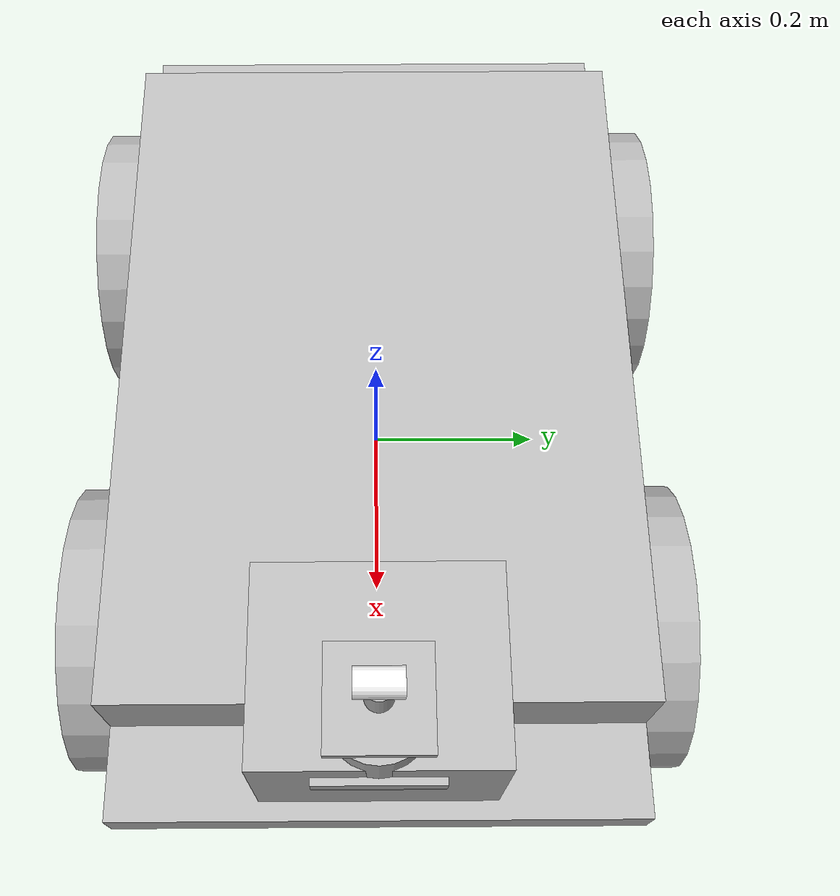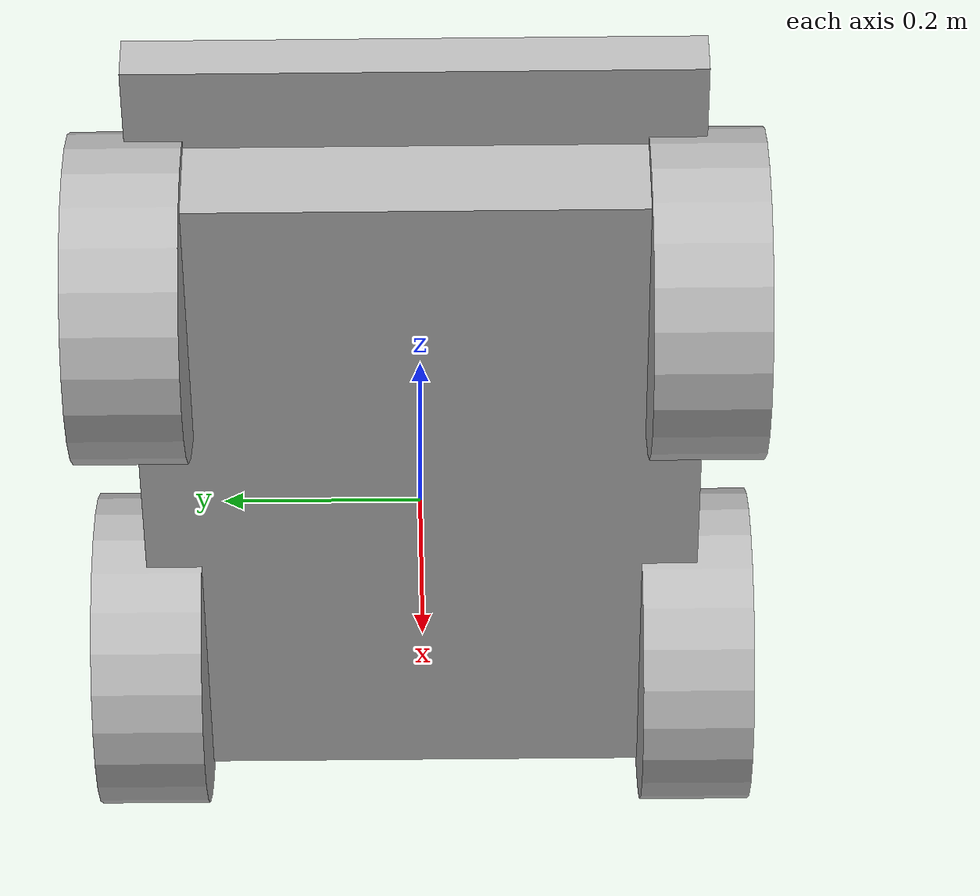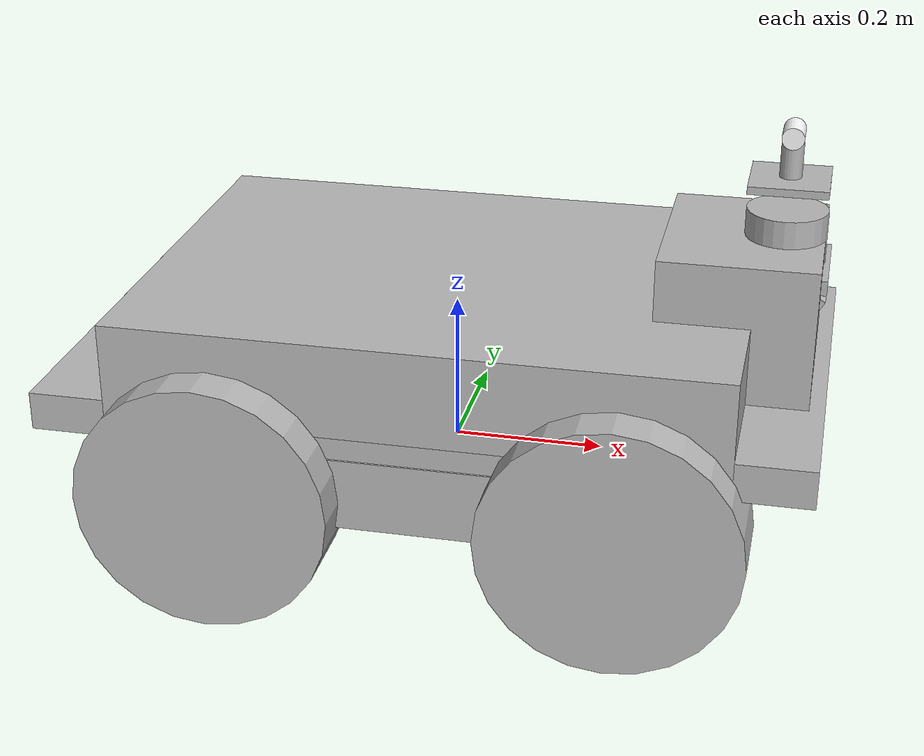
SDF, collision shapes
<?xml version='1.0' encoding='utf-8'?>
<sdf version="1.6">
    <model name="marble_husky_sensor_config_1">
        <link name="base_link">
            <pose frame="">0 0 0 0 -0 0</pose>
            <inertial>
                <pose frame="">-0.000543 -0.084945 0.062329 0 -0 0</pose>
                <mass>46.064</mass>
                <inertia>
                    <ixx>0.615397</ixx>
                    <ixy>-0.0240585</ixy>
                    <ixz>-0.120749</ixz>
                    <iyy>1.75388</iyy>
                    <iyz>-0.0028322</iyz>
                    <izz>2.03641</izz>
                </inertia>
            </inertial>
            <collision name="base_link_collision">
                <pose frame="">0 0 0.12 0 0 0</pose>
                <geometry>
                    <box>
                        <size>0.9874 0.5709 0.05</size>
                    </box>
                </geometry>
            </collision>
            <collision name="base_link_collision_bottom">
                <pose frame="">0 0 0.046 0 0 0</pose>
                <geometry>
                    <box>
                        <size>0.80 0.5709 0.095</size>
                    </box>
                </geometry>
            </collision>
            <collision name="base_link_collision_1">
                <pose frame="">0 0 0.185625 0 -0 0</pose>
                <geometry>
                    <box>
                        <size>0.78992 0.5709 0.12375</size>
                    </box>
                </geometry>
            </collision>
            <collision name="base_link_fixed_joint_lump__camera/camera_link_collision_1">
                <pose frame="pan_gimbal_link">0 0 0.05 0 0.0 0</pose>
                <geometry>
                    <box>
                        <size>0.0078 0.13 0.0192</size>
                    </box>
                </geometry>
                <surface>
                    <contact>
                        <ode>
                            <kp>1e+13</kp>
                            <kd>1</kd>
                        </ode>
                    </contact>
                    <friction>
                        <ode>
                            <mu2>1</mu2>
                            <fdir1>0 0 0</fdir1>
                        </ode>
                    </friction>
                </surface>
            </collision>
            <collision name="base_link_fixed_joint_lump__camera/camera_link_collision_2">
                <pose frame="">0.478 0 0.285 0 -0 0</pose>
                <geometry>
                    <box>
                        <size>0.0078 0.13 0.0192</size>
                    </box>
                </geometry>
                <surface>
                    <contact>
                        <ode>
                            <kp>1e+13</kp>
                            <kd>1</kd>
                        </ode>
                    </contact>
                    <friction>
                        <ode>
                            <mu2>1</mu2>
                            <fdir1>0 0 0</fdir1>
                        </ode>
                    </friction>
                </surface>
            </collision>
            <collision name="base_link_fixed_joint_lump__camera/camera_link_collision_3">
                <pose frame="">0.473 0 0.260 0 0.5236 0</pose>
                <geometry>
                    <box>
                        <size>0.0078 0.13 0.0192</size>
                    </box>
                </geometry>
                <surface>
                    <contact>
                        <ode>
                            <kp>1e+13</kp>
                            <kd>1</kd>
                        </ode>
                    </contact>
                    <friction>
                        <ode>
                            <mu2>1</mu2>
                            <fdir1>0 0 0</fdir1>
                        </ode>
                    </friction>
                </surface>
            </collision>
            <collision name="base_link_fixed_joint_lump__velodyne_base_link_collision_6">
                <pose frame="">0.424 0 0.327 0 -0 0</pose>
                <geometry>
                    <cylinder>
                        <length>0.0717</length>
                        <radius>0.0516</radius>
                    </cylinder>
                </geometry>
            </collision>
            <collision name="base_link_fixed_joint_lump__velodyne_gimbal_plate_base_link_collision_7">
                <pose frame="">0.424 0 0.400 0 -0 0</pose>
                <geometry>
                    <box>
                        <size>0.1 0.1 0.01</size>
                    </box>
                </geometry>
            </collision>
            <collision name="base_link_fixed_joint_lump__sensor_tower_8">
                <pose frame="">0.374 0 0.215 0 -0 0</pose>
                <geometry>
                    <box>
                        <size>0.2 0.25 0.225</size>
                    </box>
                </geometry>
            </collision>
            <collision name="base_link_fixed_joint_lump__landing_pad_9">
                <pose>0.0 0 0.155 0 -0 0</pose>
                <geometry>
                    <box>
                        <size>0.500 0.385 0.155</size>
                    </box>
                </geometry>
            </collision>
            <visual name="base_link_visual">
                <pose frame="">0 0 0 0 -0 0</pose>
                <geometry>
                    <mesh>
                        <scale>1 1 1</scale>
                        <uri>meshes/base_link.dae</uri>
                    </mesh>
                </geometry>
            </visual>
            <visual name="base_link_fixed_joint_lump__camera/camera_link_visual_1">
                <pose frame="">0.478 0 0.260 0 0.5236 0</pose>
                <geometry>
                    <mesh>
                        <uri>meshes/realsense.dae</uri>
                    </mesh>
                </geometry>
            </visual>
            <visual name="base_link_fixed_joint_lump__camera/camera_link_visual_2">
                <pose frame="">0.478 0 0.285 0 -0 0</pose>
                <geometry>
                    <mesh>
                        <uri>meshes/realsense.dae</uri>
                    </mesh>
                </geometry>
            </visual>
            <visual name="base_link_fixed_joint_lump__front_bumper_link_visual_3">
                <pose frame="">0.48 0 0.091 0 -0 0</pose>
                <geometry>
                    <mesh>
                        <scale>1 1 1</scale>
                        <uri>meshes/bumper.dae</uri>
                    </mesh>
                </geometry>
            </visual>
            <visual name="base_link_fixed_joint_lump__rear_bumper_link_visual_4">
                <pose frame="">-0.48 0 0.091 0 -0 3.14159</pose>
                <geometry>
                    <mesh>
                        <scale>1 1 1</scale>
                        <uri>meshes/bumper.dae</uri>
                    </mesh>
                </geometry>
            </visual>
            <visual name="base_link_fixed_joint_lump__top_chassis_link_visual_5">
                <pose frame="">0 0 0 0 -0 0</pose>
                <geometry>
                    <mesh>
                        <scale>1 1 1</scale>
                        <uri>meshes/top_chassis.dae</uri>
                    </mesh>
                </geometry>
            </visual>
            <!-- Bottom cylinder of Ouster/Velodyne 3D Lidar -->
            <visual name="base_link_fixed_joint_lump__velodyne_base_link_visual_10">
                <pose frame="">0.424 0 0.327 0 -0 0</pose>
                <geometry>
                    <mesh>
                        <scale>1 1 1</scale>
                        <uri>meshes/VLP16_base_1.dae</uri>
                    </mesh>
                </geometry>
            </visual>
            <!-- Top cylinder of Ouster/Velodyne 3D Lidar -->
            <visual name="base_link_fixed_joint_lump__velodyne_base_link_visual_11">
                <pose frame="">0.424 0 0.327 0 -0 0</pose>
                <geometry>
                    <mesh>
                        <scale>1 1 1</scale>
                        <uri>meshes/VLP16_base_2.dae</uri>
                    </mesh>
                </geometry>
            </visual>
            <!-- Main cylinder of Ouster/Velodyne 3D Lidar -->
            <visual name="base_link_fixed_joint_lump__velodyne_visual_12">
                <pose frame="">0.424 0 0.327 0 -0 0</pose>
                <geometry>
                    <mesh>
                        <scale>1 1 1</scale>
                        <uri>meshes/VLP16_scan.dae</uri>
                    </mesh>
                </geometry>
            </visual>
            <!-- Rail on top of husky -->
            <visual name="base_link_fixed_joint_lump__user_rail_link_visual_13">
                <pose frame="">0.272 0 0.245 0 -0 0</pose>
                <geometry>
                    <mesh>
                        <scale>1 1 1</scale>
                        <uri>meshes/user_rail.dae</uri>
                    </mesh>
                </geometry>
            </visual>
            <!-- 2D planar lidar at bottom of sensor suite -->
            <visual name="base_link_fixed_joint_lump__planar_lidar_link_visual_14">
                <pose frame="">0.474 0 0.127 0 -0 0</pose>
                <geometry>
                    <cylinder>
                        <radius>0.045</radius>
                        <length>0.05</length>
                    </cylinder>
                </geometry>
            </visual>
            <visual name="base_link_fixed_joint_lump__velodyne_gimbal_plate_15">
                <pose frame="">0.424 0 0.400 0 -0 0</pose>
                <geometry>
                    <box>
                        <size>0.06 0.06 0.01</size>
                    </box>
                </geometry>
            </visual>
            <visual name="base_link_fixed_joint_lump__sensor_tower_16">
                <pose frame="">0.374 0 0.215 0 -0 0</pose>
                <geometry>
                    <box>
                        <size>0.2 0.25 0.225</size>
                    </box>
                </geometry>
            </visual>
            <visual name="base_link_fixed_joint_lump__landing_pad_17">
                <pose>0.0 0 0.155 0 -0 0</pose>
                <geometry>
                    <box>
                        <size>0.500 0.385 0.155</size>
                    </box>
                </geometry>
            </visual>
            <velocity_decay/>
            <self_collide>0</self_collide>
            <enable_wind>0</enable_wind>
            <kinematic>0</kinematic>
            <!-- Based on Intel realsense D435 (intrinsics and distortion not modeled)-->
            <sensor name="camera_front" type="rgbd_camera">
                <camera name="camera_front">
                    <horizontal_fov>1.5184</horizontal_fov>
                    <lens>
                        <intrinsics>
                            <!-- fx = fy = width / ( 2 * tan (hfov / 2 ) ) -->
                            <fx>168.61097</fx>
                            <fy>168.61097</fy>
                            <!-- cx = ( width + 1 ) / 2 -->
                            <cx>160.5</cx>
                            <!-- cy = ( height + 1 ) / 2 -->
                            <cy>120.5</cy>
                            <s>0</s>
                        </intrinsics>
                    </lens>
                    <distortion>
                        <k1>0.0</k1>
                        <k2>0.0</k2>
                        <k3>0.0</k3>
                        <p1>0.0</p1>
                        <p2>0.0</p2>
                        <center>0.5 0.5</center>
                    </distortion>
                    <image>
                        <width>320</width>
                        <height>240</height>
                        <format>R8G8B8</format>
                    </image>
                    <clip>
                        <near>0.01</near>
                        <far>300</far>
                    </clip>
                    <depth_camera>
                        <clip>
                            <near>0.1</near>
                            <far>10</far>
                        </clip>
                    </depth_camera>
                    <noise>
                        <type>gaussian</type>
                        <mean>0</mean>
                        <stddev>0.007</stddev>
                    </noise>
                </camera>
                <always_on>1</always_on>
                <update_rate>30</update_rate>
                <visualize>0</visualize>
                <pose frame="">0.468 0 0.360 0 -0 0</pose>
            </sensor>
            <gravity>1</gravity>
            <velocity_decay/>
            <!-- Based on Intel realsense D435 (intrinsics and distortion not modeled)-->
            <sensor name="camera_down" type="rgbd_camera">
                <camera name="camera_down">
                    <horizontal_fov>1.5184</horizontal_fov>
                    <lens>
                        <intrinsics>
                            <!-- fx = fy = width / ( 2 * tan (hfov / 2 ) ) -->
                            <fx>168.61097</fx>
                            <fy>168.61097</fy>
                            <!-- cx = ( width + 1 ) / 2 -->
                            <cx>160.5</cx>
                            <!-- cy = ( height + 1 ) / 2 -->
                            <cy>120.5</cy>
                            <s>0</s>
                        </intrinsics>
                    </lens>
                    <distortion>
                        <k1>0.0</k1>
                        <k2>0.0</k2>
                        <k3>0.0</k3>
                        <p1>0.0</p1>
                        <p2>0.0</p2>
                        <center>0.5 0.5</center>
                    </distortion>
                    <image>
                        <width>320</width>
                        <height>240</height>
                        <format>R8G8B8</format>
                    </image>
                    <clip>
                        <near>0.01</near>
                        <far>300</far>
                    </clip>
                    <depth_camera>
                        <clip>
                            <near>0.1</near>
                            <far>10</far>
                        </clip>
                    </depth_camera>
                    <noise>
                        <type>gaussian</type>
                        <mean>0</mean>
                        <stddev>0.007</stddev>
                    </noise>
                </camera>
                <always_on>1</always_on>
                <update_rate>30</update_rate>
                <visualize>0</visualize>
                <pose frame="">0.468 0 0.335 0 0.5236 0</pose>
            </sensor>
            <gravity>1</gravity>
            <velocity_decay/>
            <!-- Based on RPLidar S1 -->
            <sensor name="planar_laser" type="gpu_ray">
                <pose>0.474 0 0.127 0 -0 0</pose>
                <update_rate>10</update_rate>
                <lidar>
                    <scan>
                        <horizontal>
                            <samples>920</samples>
                            <resolution>1</resolution>
                            <min_angle>-3.14159</min_angle>
                            <max_angle>3.14159</max_angle>
                        </horizontal>
                    </scan>
                    <range>
                        <min>0.04</min>
                        <max>25</max>
                        <resolution>0.03</resolution>
                    </range>
                    <noise>
                        <type>gaussian</type>
                        <mean>0</mean>
                        <stddev>0.01</stddev>
                    </noise>
                </lidar>
            </sensor>
            <gravity>1</gravity>
            <velocity_decay/>
            <!-- OS1-64 3D Laser Configuration (10x2048 or 10x1024 or 20x1024 or 20x512 as possible (rate) x (hor. res.) configs)-->
            <sensor name="front_laser" type="gpu_lidar">
                <visualize>0</visualize>
                <update_rate>20</update_rate>
                <lidar>
                    <scan>
                        <horizontal>
                            <samples>1024</samples>
                            <resolution>1</resolution>
                            <min_angle>-3.14159</min_angle>
                            <max_angle>3.14159</max_angle>
                        </horizontal>
                        <vertical>
                            <samples>64</samples>
                            <resolution>1</resolution>
                            <min_angle>-0.2897</min_angle>
                            <max_angle>0.2897</max_angle>
                        </vertical>
                    </scan>
                    <range>
                        <min>0.8</min>
                        <max>120</max>
                        <resolution>0.003</resolution>
                    </range>
                    <noise>
                        <type>gaussian</type>
                        <mean>0</mean>
                        <stddev>0.03</stddev>
                    </noise>
                </lidar>
                <pose frame="">0.424 0 0.387 0 -0 0</pose>
            </sensor>
            <sensor name="imu_sensor" type="imu">
                <always_on>1</always_on>
                <update_rate>50</update_rate>
                <imu>
                    <enable_orientation>0</enable_orientation>
                    <angular_velocity>
                        <x>
                            <noise type="gaussian">
                                <mean>0</mean>
                                <stddev>0.009</stddev>
                                <bias_mean>0.00075</bias_mean>
                                <bias_stddev>0.005</bias_stddev>
                                <dynamic_bias_stddev>0.00002</dynamic_bias_stddev>
                                <dynamic_bias_correlation_time>400.0</dynamic_bias_correlation_time>
                                <precision>0.00025</precision>
                            </noise>
                        </x>
                        <y>
                            <noise type="gaussian">
                                <mean>0</mean>
                                <stddev>0.009</stddev>
                                <bias_mean>0.00075</bias_mean>
                                <bias_stddev>0.005</bias_stddev>
                                <dynamic_bias_stddev>0.00002</dynamic_bias_stddev>
                                <dynamic_bias_correlation_time>400.0</dynamic_bias_correlation_time>
                                <precision>0.00025</precision>
                            </noise>
                        </y>
                        <z>
                            <noise type="gaussian">
                                <mean>0</mean>
                                <stddev>0.009</stddev>
                                <bias_mean>0.00075</bias_mean>
                                <bias_stddev>0.005</bias_stddev>
                                <dynamic_bias_stddev>0.00002</dynamic_bias_stddev>
                                <dynamic_bias_correlation_time>400.0</dynamic_bias_correlation_time>
                                <precision>0.00025</precision>
                            </noise>
                        </z>
                    </angular_velocity>
                    <linear_acceleration>
                        <x>
                            <noise type="gaussian">
                                <mean>0</mean>
                                <stddev>0.021</stddev>
                                <bias_mean>0.05</bias_mean>
                                <bias_stddev>0.0075</bias_stddev>
                                <dynamic_bias_stddev>0.000375</dynamic_bias_stddev>
                                <dynamic_bias_correlation_time>175.0</dynamic_bias_correlation_time>
                                <precision>0.005</precision>
                            </noise>
                        </x>
                        <y>
                            <noise type="gaussian">
                                <mean>0</mean>
                                <stddev>0.021</stddev>
                                <bias_mean>0.05</bias_mean>
                                <bias_stddev>0.0075</bias_stddev>
                                <dynamic_bias_stddev>0.000375</dynamic_bias_stddev>
                                <dynamic_bias_correlation_time>175.0</dynamic_bias_correlation_time>
                                <precision>0.005</precision>
                            </noise>
                        </y>
                        <z>
                            <noise type="gaussian">
                                <mean>0</mean>
                                <stddev>0.021</stddev>
                                <bias_mean>0.05</bias_mean>
                                <bias_stddev>0.0075</bias_stddev>
                                <dynamic_bias_stddev>0.000375</dynamic_bias_stddev>
                                <dynamic_bias_correlation_time>175.0</dynamic_bias_correlation_time>
                                <precision>0.005</precision>
                            </noise>
                        </z>
                    </linear_acceleration>
                </imu>
            </sensor>
        </link>
        <link name="front_left_wheel_link">
            <pose frame="">0.256 0.2854 0.03282 0 -0 0</pose>
            <inertial>
                <pose frame="">0 0 0 0 -0 0</pose>
                <mass>2.637</mass>
                <inertia>
                    <ixx>0.02467</ixx>
                    <ixy>0</ixy>
                    <ixz>0</ixz>
                    <iyy>0.04411</iyy>
                    <iyz>0</iyz>
                    <izz>0.02467</izz>
                </inertia>
            </inertial>
            <collision name="front_left_wheel_link_collision">
                <pose frame="">0 0 0 1.5707963267948966 -0 0</pose>
                <geometry>
                    <cylinder>
                        <length>0.1143</length>
                        <radius>0.1651</radius>
                    </cylinder>
                </geometry>
                <surface>
                    <contact>
                        <ode>
                            <kp>1e+07</kp>
                            <kd>1</kd>
                        </ode>
                    </contact>
                    <friction>
                        <ode>
                            <mu>0.5</mu>
                            <mu2>1</mu2>
                            <slip1>0.00062</slip1>
                            <slip2>0</slip2>
                            <fdir1>0 0 1</fdir1>
                        </ode>
                    </friction>
                </surface>
            </collision>
            <visual name="front_left_wheel_link_visual">
                <pose frame="">0 0 0 0 -0 0</pose>
                <geometry>
                    <mesh>
                        <scale>1 1 1</scale>
                        <uri>meshes/wheel.dae</uri>
                    </mesh>
                </geometry>
            </visual>
            <gravity>1</gravity>
            <velocity_decay/>
        </link>
        <joint name="front_left_wheel_joint" type="revolute">
            <child>front_left_wheel_link</child>
            <parent>base_link</parent>
            <axis>
                <xyz>0 1 0</xyz>
                <limit>
                    <lower>-1e+16</lower>
                    <upper>1e+16</upper>
                </limit>
                <dynamics>
                    <spring_reference>0</spring_reference>
                    <spring_stiffness>0</spring_stiffness>
                </dynamics>
                <use_parent_model_frame>1</use_parent_model_frame>
            </axis>
        </joint>
        <link name="front_right_wheel_link">
            <pose frame="">0.256 -0.2854 0.03282 0 -0 0</pose>
            <inertial>
                <pose frame="">0 0 0 0 -0 0</pose>
                <mass>2.637</mass>
                <inertia>
                    <ixx>0.02467</ixx>
                    <ixy>0</ixy>
                    <ixz>0</ixz>
                    <iyy>0.04411</iyy>
                    <iyz>0</iyz>
                    <izz>0.02467</izz>
                </inertia>
            </inertial>
            <collision name="front_right_wheel_link_collision">
                <pose frame="">0 0 0 1.5707963267948966 -0 0</pose>
                <geometry>
                    <cylinder>
                        <length>0.1143</length>
                        <radius>0.1651</radius>
                    </cylinder>
                </geometry>
                <surface>
                    <contact>
                        <ode>
                            <kp>1e+07</kp>
                            <kd>1</kd>
                        </ode>
                    </contact>
                    <friction>
                        <ode>
                            <mu>0.5</mu>
                            <mu2>1</mu2>
                            <slip1>0.00062</slip1>
                            <slip2>0</slip2>
                            <fdir1>0 0 1</fdir1>
                        </ode>
                    </friction>
                </surface>
            </collision>
            <visual name="front_right_wheel_link_visual">
                <pose frame="">0 0 0 0 -0 0</pose>
                <geometry>
                    <mesh>
                        <scale>1 1 1</scale>
                        <uri>meshes/wheel.dae</uri>
                    </mesh>
                </geometry>
            </visual>
            <gravity>1</gravity>
            <velocity_decay/>
        </link>
        <joint name="front_right_wheel_joint" type="revolute">
            <child>front_right_wheel_link</child>
            <parent>base_link</parent>
            <axis>
                <xyz>0 1 0</xyz>
                <limit>
                    <lower>-1e+16</lower>
                    <upper>1e+16</upper>
                </limit>
                <dynamics>
                    <spring_reference>0</spring_reference>
                    <spring_stiffness>0</spring_stiffness>
                </dynamics>
                <use_parent_model_frame>1</use_parent_model_frame>
            </axis>
        </joint>
        <link name="rear_left_wheel_link">
            <pose frame="">-0.256 0.2854 0.03282 0 -0 0</pose>
            <inertial>
                <pose frame="">0 0 0 0 -0 0</pose>
                <mass>2.637</mass>
                <inertia>
                    <ixx>0.02467</ixx>
                    <ixy>0</ixy>
                    <ixz>0</ixz>
                    <iyy>0.04411</iyy>
                    <iyz>0</iyz>
                    <izz>0.02467</izz>
                </inertia>
            </inertial>
            <collision name="rear_left_wheel_link_collision">
                <pose frame="">0 0 0 1.5707963267948966 -0 0</pose>
                <geometry>
                    <cylinder>
                        <length>0.1143</length>
                        <radius>0.1651</radius>
                    </cylinder>
                </geometry>
                <surface>
                    <contact>
                        <ode>
                            <kp>1e+07</kp>
                            <kd>1</kd>
                        </ode>
                    </contact>
                    <friction>
                        <ode>
                            <mu>0.5</mu>
                            <mu2>1</mu2>
                            <slip1>0.00062</slip1>
                            <slip2>0</slip2>
                            <fdir1>0 0 1</fdir1>
                        </ode>
                    </friction>
                </surface>
            </collision>
            <visual name="rear_left_wheel_link_visual">
                <pose frame="">0 0 0 0 -0 0</pose>
                <geometry>
                    <mesh>
                        <scale>1 1 1</scale>
                        <uri>meshes/wheel.dae</uri>
                    </mesh>
                </geometry>
            </visual>
            <gravity>1</gravity>
            <velocity_decay/>
        </link>
        <joint name="rear_left_wheel_joint" type="revolute">
            <child>rear_left_wheel_link</child>
            <parent>base_link</parent>
            <axis>
                <xyz>0 1 0</xyz>
                <limit>
                    <lower>-1e+16</lower>
                    <upper>1e+16</upper>
                </limit>
                <dynamics>
                    <spring_reference>0</spring_reference>
                    <spring_stiffness>0</spring_stiffness>
                </dynamics>
                <use_parent_model_frame>1</use_parent_model_frame>
            </axis>
        </joint>
        <link name="rear_right_wheel_link">
            <pose frame="">-0.256 -0.2854 0.03282 0 -0 0</pose>
            <inertial>
                <pose frame="">0 0 0 0 -0 0</pose>
                <mass>2.637</mass>
                <inertia>
                    <ixx>0.02467</ixx>
                    <ixy>0</ixy>
                    <ixz>0</ixz>
                    <iyy>0.04411</iyy>
                    <iyz>0</iyz>
                    <izz>0.02467</izz>
                </inertia>
            </inertial>
            <collision name="rear_right_wheel_link_collision">
                <pose frame="">0 0 0 1.5707963267948966 -0 0</pose>
                <geometry>
                    <cylinder>
                        <length>0.1143</length>
                        <radius>0.1651</radius>
                    </cylinder>
                </geometry>
                <surface>
                    <contact>
                        <ode>
                            <kp>1e+07</kp>
                            <kd>1</kd>
                        </ode>
                    </contact>
                    <friction>
                        <ode>
                            <mu>0.5</mu>
                            <mu2>1</mu2>
                            <slip1>0.00062</slip1>
                            <slip2>0</slip2>
                            <fdir1>0 0 1</fdir1>
                        </ode>
                    </friction>
                </surface>
            </collision>
            <visual name="rear_right_wheel_link_visual">
                <pose frame="">0 0 0 0 -0 0</pose>
                <geometry>
                    <mesh>
                        <scale>1 1 1</scale>
                        <uri>meshes/wheel.dae</uri>
                    </mesh>
                </geometry>
            </visual>
            <gravity>1</gravity>
            <velocity_decay/>
        </link>
        <joint name="rear_right_wheel_joint" type="revolute">
            <child>rear_right_wheel_link</child>
            <parent>base_link</parent>
            <axis>
                <xyz>0 1 0</xyz>
                <limit>
                    <lower>-1e+16</lower>
                    <upper>1e+16</upper>
                </limit>
                <dynamics>
                    <spring_reference>0</spring_reference>
                    <spring_stiffness>0</spring_stiffness>
                </dynamics>
                <use_parent_model_frame>1</use_parent_model_frame>
            </axis>
        </joint>
        <link name="pan_gimbal_link">
            <pose frame="">0.424 0 0.427 0 -0 0</pose>
            <inertial>
                <pose frame="">0 0 0 0 -0 0</pose>
                <mass>0.1</mass>
                <inertia>
                    <ixx>0.000016875</ixx>
                    <ixy>0</ixy>
                    <ixz>0</ixz>
                    <iyy>0.00000001</iyy>
                    <iyz>0</iyz>
                    <izz>0.000016875</izz>
                </inertia>
            </inertial>
            <collision name="pan_gimbal_link_collision">
                <pose frame="">0.0 0 0.0 0 -0 0</pose>
                <geometry>
                    <cylinder>
                        <length>0.045</length>
                        <radius>0.014</radius>
                    </cylinder>
                </geometry>
                <surface>
                    <contact>
                        <ode>
                            <kp>1e+07</kp>
                            <kd>1</kd>
                        </ode>
                    </contact>
                </surface>
            </collision>
            <visual name="pan_gimbal_link_visual">
                <pose frame="">0.0 0 0.0 0 -0 0</pose>
                <geometry>
                    <cylinder>
                        <length>0.045</length>
                        <radius>0.014</radius>
                    </cylinder>
                </geometry>
            </visual>
        </link>
        <link name="tilt_gimbal_link">
            <pose frame="">0.424 0 0.460 0 -0 0</pose>
            <inertial>
                <pose frame="">0 0 0 1.570796 -0 0</pose>
                <mass>0.1</mass>
                <inertia>
                    <ixx>0.000016875</ixx>
                    <ixy>0</ixy>
                    <ixz>0</ixz>
                    <iyy>0.00000001</iyy>
                    <iyz>0</iyz>
                    <izz>0.000016875</izz>
                </inertia>
            </inertial>
            <collision name="tilt_gimbal_link_collision">
                <pose frame="">0.0 0 0.0 1.570796 -0 0</pose>
                <geometry>
                    <cylinder>
                        <length>0.045</length>
                        <radius>0.014</radius>
                    </cylinder>
                </geometry>
                <surface>
                    <contact>
                        <ode>
                            <kp>1e+07</kp>
                            <kd>1</kd>
                        </ode>
                    </contact>
                </surface>
            </collision>
            <visual name="tilt_gimbal_link_visual">
                <pose frame="">0.0 0 0.0 1.570796 -0 0</pose>
                <geometry>
                    <cylinder>
                        <length>0.045</length>
                        <radius>0.014</radius>
                    </cylinder>
                </geometry>
            </visual>
            <!-- Based on Intel realsense D435 (intrinsics and distortion not modeled)-->
            <sensor name="camera_pan_tilt" type="rgbd_camera">
                <camera name="camera_pan_tilt">
                    <horizontal_fov>1.5184</horizontal_fov>
                    <lens>
                        <intrinsics>
                            <!-- fx = fy = width / ( 2 * tan (hfov / 2 ) ) -->
                            <fx>337.22195</fx>
                            <fy>337.22195</fy>
                            <!-- cx = ( width + 1 ) / 2 -->
                            <cx>320.5</cx>
                            <!-- cy = ( height + 1 ) / 2 -->
                            <cy>240.5</cy>
                            <s>0</s>
                        </intrinsics>
                    </lens>
                    <distortion>
                        <k1>0.0</k1>
                        <k2>0.0</k2>
                        <k3>0.0</k3>
                        <p1>0.0</p1>
                        <p2>0.0</p2>
                        <center>0.5 0.5</center>
                    </distortion>
                    <image>
                        <width>640</width>
                        <height>480</height>
                        <format>R8G8B8</format>
                    </image>
                    <clip>
                        <near>0.01</near>
                        <far>300</far>
                    </clip>
                    <depth_camera>
                        <clip>
                            <near>0.1</near>
                            <far>10</far>
                        </clip>
                    </depth_camera>
                    <noise>
                        <type>gaussian</type>
                        <mean>0</mean>
                        <stddev>0.007</stddev>
                    </noise>
                </camera>
                <always_on>1</always_on>
                <update_rate>30</update_rate>
                <visualize>0</visualize>
                <pose frame="">0.0 0 0.03 0 0.0 0</pose>
            </sensor>
            <gravity>1</gravity>
            <velocity_decay/>
            <visual name="tilt_gimbal_link_fixed_joint_lump__camera/camera_link_visual_0">
                <pose frame="">0 0 0.03 0 0.0 0</pose>
                <geometry>
                    <mesh>
                        <uri>meshes/realsense.dae</uri>
                    </mesh>
                </geometry>
            </visual>
            <visual name="tilt_gimbal_link_fixed_joint_lump_bot_camera_plate_link_visual_1">
                <pose frame="">0 0 0.017 0 -0 0</pose>
                <geometry>
                    <box>
                        <size>0.025 0.13 0.007</size>
                    </box>
                </geometry>
            </visual>
            <visual name="tilt_gimbal_link_fixed_joint_lump_bot_camera_plate_link_visual_2">
                <pose frame="">0 0 0.042 0 -0 0</pose>
                <geometry>
                    <box>
                        <size>0.025 0.13 0.007</size>
                    </box>
                </geometry>
            </visual>
            <light name="flashlight_flashlight_light_source_lamp_light" type="spot">
                <pose frame="">0.0 0.0 0.065 3.141592653589793 1.5707963267948966 -0.0015926535897931</pose>
                <attenuation>
                    <range>50</range>
                    <linear>0</linear>
                    <constant>0.1</constant>
                    <quadratic>0.0025</quadratic>
                </attenuation>
                <diffuse>0.8 0.8 0.5 1</diffuse>
                <specular>0.8 0.8 0.5 1</specular>
                <spot>
                    <!-- The lights on the MARBLE ground vehicles are very wide angle, 100W LEDs -->
                    <inner_angle>2.8</inner_angle>
                    <outer_angle>2.9</outer_angle>
                    <falloff>1</falloff>
                </spot>
                <direction>0 0 -1</direction>
            </light>
            <visual name="flashlight_flashlight_light_source_lamp_viz_visual">
                <pose>0.0 0.0 0.065 3.141592653589793 1.5707963267948966 -0.0015926535897931</pose>
                <geometry>
                    <cylinder>
                        <radius>0.019</radius>
                        <length>0.005</length>
                    </cylinder>
                </geometry>
                <transparency>0</transparency>
                <material>
                    <ambient>1 1 1 1</ambient>
                    <diffuse>1 1 1 1</diffuse>
                    <specular>1 1 1 1</specular>
                    <emissive>1 1 1 1</emissive>
                </material>
            </visual>
        </link>
        <joint name="pan_gimbal_joint" type="revolute">
            <child>pan_gimbal_link</child>
            <parent>base_link</parent>
            <axis>
                <xyz>0 0 1</xyz>
                <limit>
                    <lower>-1e+16</lower>
                    <upper>1e+16</upper>
                    <effort>10</effort>
                </limit>
                <dynamics>
                    <spring_reference>0</spring_reference>
                    <spring_stiffness>0</spring_stiffness>
                    <damping>0.5</damping>
                </dynamics>
                <use_parent_model_frame>1</use_parent_model_frame>
            </axis>
        </joint>
        <joint name="tilt_gimbal_joint" type="revolute">
            <child>tilt_gimbal_link</child>
            <parent>pan_gimbal_link</parent>
            <axis>
                <xyz>0 1 0</xyz>
                <limit>
                    <lower>-1.5708</lower>
                    <!-- 90 degrees both direction (mechanical interference)-->
                    <upper>1.5708</upper>
                    <effort>10</effort>
                </limit>
                <dynamics>
                    <spring_reference>0</spring_reference>
                    <spring_stiffness>0</spring_stiffness>
                    <damping>0.5</damping>
                </dynamics>
                <use_parent_model_frame>1</use_parent_model_frame>
            </axis>
        </joint>
        <!-- Gimbal Joints Plugins -->
        <plugin filename="libignition-gazebo-joint-controller-system.so" name="ignition::gazebo::systems::JointController">
            <joint_name>pan_gimbal_joint</joint_name>
            <use_force_commands>true</use_force_commands>
            <p_gain>0.4</p_gain>
            <i_gain>10</i_gain>
        </plugin>
        <plugin filename="libignition-gazebo-joint-controller-system.so" name="ignition::gazebo::systems::JointController">
            <joint_name>tilt_gimbal_joint</joint_name>
            <use_force_commands>true</use_force_commands>
            <p_gain>0.4</p_gain>
            <i_gain>10</i_gain>
        </plugin>
        <plugin filename="libignition-gazebo-joint-state-publisher-system.so" name="ignition::gazebo::systems::JointStatePublisher">
            <joint_name>pan_gimbal_joint</joint_name>
            <joint_name>tilt_gimbal_joint</joint_name>
        </plugin>
        <static>0</static>
    </model>
</sdf>
